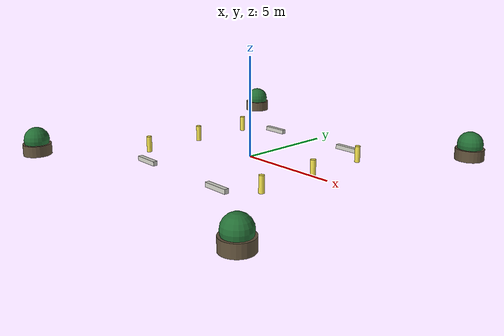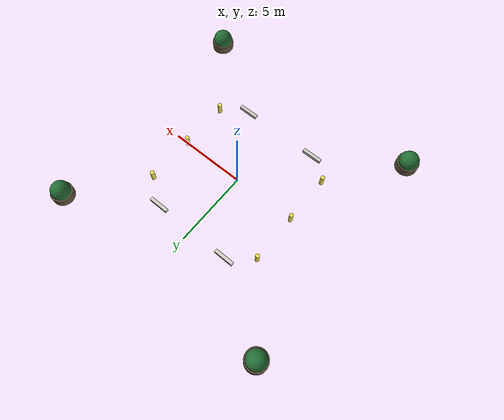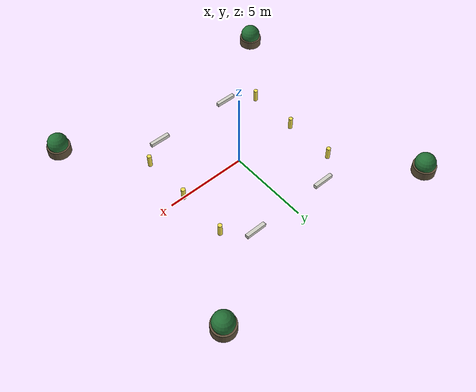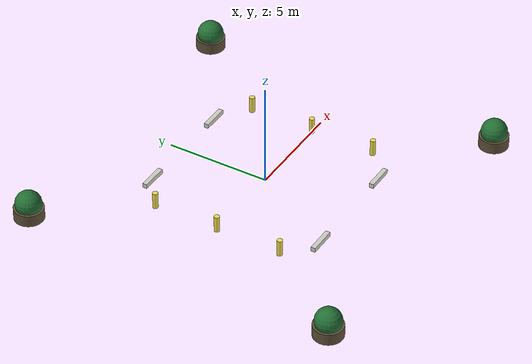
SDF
<sdf version="1.7">
 <world name="real">
  <include><uri>model://sun</uri></include>
  <model name="central_lidar_landmarks">
   <static>true</static>
   <link name="southwest_planter">
    <pose>-7.6 -7.6 0.28 0 0 0</pose>
    <collision name="collision">
     <geometry><cylinder><radius>0.7</radius><length>0.56</length></cylinder></geometry>
    </collision>
    <visual name="visual">
     <geometry><cylinder><radius>0.7</radius><length>0.56</length></cylinder></geometry>
     <material><ambient>0.28 0.24 0.18 1</ambient><diffuse>0.38 0.32 0.23 1</diffuse></material>
    </visual>
    <visual name="shrub">
     <pose>0 0 0.48 0 0 0</pose>
     <geometry><sphere><radius>0.62</radius></sphere></geometry>
     <material><ambient>0.10 0.34 0.16 1</ambient><diffuse>0.14 0.44 0.21 1</diffuse></material>
    </visual>
   </link>
   <link name="southeast_planter">
    <pose>7.6 -7.6 0.28 0 0 0</pose>
    <collision name="collision">
     <geometry><cylinder><radius>0.7</radius><length>0.56</length></cylinder></geometry>
    </collision>
    <visual name="visual">
     <geometry><cylinder><radius>0.7</radius><length>0.56</length></cylinder></geometry>
     <material><ambient>0.28 0.24 0.18 1</ambient><diffuse>0.38 0.32 0.23 1</diffuse></material>
    </visual>
    <visual name="shrub">
     <pose>0 0 0.48 0 0 0</pose>
     <geometry><sphere><radius>0.62</radius></sphere></geometry>
     <material><ambient>0.10 0.34 0.16 1</ambient><diffuse>0.14 0.44 0.21 1</diffuse></material>
    </visual>
   </link>
   <link name="northwest_planter">
    <pose>-7.6 7.6 0.28 0 0 0</pose>
    <collision name="collision">
     <geometry><cylinder><radius>0.7</radius><length>0.56</length></cylinder></geometry>
    </collision>
    <visual name="visual">
     <geometry><cylinder><radius>0.7</radius><length>0.56</length></cylinder></geometry>
     <material><ambient>0.28 0.24 0.18 1</ambient><diffuse>0.38 0.32 0.23 1</diffuse></material>
    </visual>
    <visual name="shrub">
     <pose>0 0 0.48 0 0 0</pose>
     <geometry><sphere><radius>0.62</radius></sphere></geometry>
     <material><ambient>0.10 0.34 0.16 1</ambient><diffuse>0.14 0.44 0.21 1</diffuse></material>
    </visual>
   </link>
   <link name="northeast_planter">
    <pose>7.6 7.6 0.28 0 0 0</pose>
    <collision name="collision">
     <geometry><cylinder><radius>0.7</radius><length>0.56</length></cylinder></geometry>
    </collision>
    <visual name="visual">
     <geometry><cylinder><radius>0.7</radius><length>0.56</length></cylinder></geometry>
     <material><ambient>0.28 0.24 0.18 1</ambient><diffuse>0.38 0.32 0.23 1</diffuse></material>
    </visual>
    <visual name="shrub">
     <pose>0 0 0.48 0 0 0</pose>
     <geometry><sphere><radius>0.62</radius></sphere></geometry>
     <material><ambient>0.10 0.34 0.16 1</ambient><diffuse>0.14 0.44 0.21 1</diffuse></material>
    </visual>
   </link>
   <link name="west_bollard_1">
    <pose>-4.15 -3.2 0.4 0 0 0</pose>
    <collision name="collision">
     <geometry><cylinder><radius>0.13</radius><length>0.8</length></cylinder></geometry>
    </collision>
    <visual name="visual">
     <geometry><cylinder><radius>0.13</radius><length>0.8</length></cylinder></geometry>
     <material><ambient>0.75 0.72 0.25 1</ambient><diffuse>0.95 0.88 0.30 1</diffuse></material>
    </visual>
   </link>
   <link name="west_bollard_2">
    <pose>-4.15 0.0 0.4 0 0 0</pose>
    <collision name="collision">
     <geometry><cylinder><radius>0.13</radius><length>0.8</length></cylinder></geometry>
    </collision>
    <visual name="visual">
     <geometry><cylinder><radius>0.13</radius><length>0.8</length></cylinder></geometry>
     <material><ambient>0.75 0.72 0.25 1</ambient><diffuse>0.95 0.88 0.30 1</diffuse></material>
    </visual>
   </link>
   <link name="west_bollard_3">
    <pose>-4.15 3.2 0.4 0 0 0</pose>
    <collision name="collision">
     <geometry><cylinder><radius>0.13</radius><length>0.8</length></cylinder></geometry>
    </collision>
    <visual name="visual">
     <geometry><cylinder><radius>0.13</radius><length>0.8</length></cylinder></geometry>
     <material><ambient>0.75 0.72 0.25 1</ambient><diffuse>0.95 0.88 0.30 1</diffuse></material>
    </visual>
   </link>
   <link name="east_bollard_1">
    <pose>4.15 -3.2 0.4 0 0 0</pose>
    <collision name="collision">
     <geometry><cylinder><radius>0.13</radius><length>0.8</length></cylinder></geometry>
    </collision>
    <visual name="visual">
     <geometry><cylinder><radius>0.13</radius><length>0.8</length></cylinder></geometry>
     <material><ambient>0.75 0.72 0.25 1</ambient><diffuse>0.95 0.88 0.30 1</diffuse></material>
    </visual>
   </link>
   <link name="east_bollard_2">
    <pose>4.15 0.0 0.4 0 0 0</pose>
    <collision name="collision">
     <geometry><cylinder><radius>0.13</radius><length>0.8</length></cylinder></geometry>
    </collision>
    <visual name="visual">
     <geometry><cylinder><radius>0.13</radius><length>0.8</length></cylinder></geometry>
     <material><ambient>0.75 0.72 0.25 1</ambient><diffuse>0.95 0.88 0.30 1</diffuse></material>
    </visual>
   </link>
   <link name="east_bollard_3">
    <pose>4.15 3.2 0.4 0 0 0</pose>
    <collision name="collision">
     <geometry><cylinder><radius>0.13</radius><length>0.8</length></cylinder></geometry>
    </collision>
    <visual name="visual">
     <geometry><cylinder><radius>0.13</radius><length>0.8</length></cylinder></geometry>
     <material><ambient>0.75 0.72 0.25 1</ambient><diffuse>0.95 0.88 0.30 1</diffuse></material>
    </visual>
   </link>
   <link name="north_parking_stop_1">
    <pose>-2.6 4.35 0.11 0 0 0</pose>
    <collision name="collision"><geometry><box><size>1.3 0.22 0.22</size></box></geometry></collision>
    <visual name="visual">
     <geometry><box><size>1.3 0.22 0.22</size></box></geometry>
     <material><ambient>0.72 0.72 0.68 1</ambient><diffuse>0.82 0.82 0.78 1</diffuse></material>
    </visual>
   </link>
   <link name="north_parking_stop_2">
    <pose>2.6 4.35 0.11 0 0 0</pose>
    <collision name="collision"><geometry><box><size>1.3 0.22 0.22</size></box></geometry></collision>
    <visual name="visual">
     <geometry><box><size>1.3 0.22 0.22</size></box></geometry>
     <material><ambient>0.72 0.72 0.68 1</ambient><diffuse>0.82 0.82 0.78 1</diffuse></material>
    </visual>
   </link>
   <link name="south_parking_stop_1">
    <pose>-2.6 -4.35 0.11 0 0 0</pose>
    <collision name="collision"><geometry><box><size>1.3 0.22 0.22</size></box></geometry></collision>
    <visual name="visual">
     <geometry><box><size>1.3 0.22 0.22</size></box></geometry>
     <material><ambient>0.72 0.72 0.68 1</ambient><diffuse>0.82 0.82 0.78 1</diffuse></material>
    </visual>
   </link>
   <link name="south_parking_stop_2">
    <pose>2.6 -4.35 0.11 0 0 0</pose>
    <collision name="collision"><geometry><box><size>1.3 0.22 0.22</size></box></geometry></collision>
    <visual name="visual">
     <geometry><box><size>1.3 0.22 0.22</size></box></geometry>
     <material><ambient>0.72 0.72 0.68 1</ambient><diffuse>0.82 0.82 0.78 1</diffuse></material>
    </visual>
   </link>
  </model>
 </world>
</sdf>
